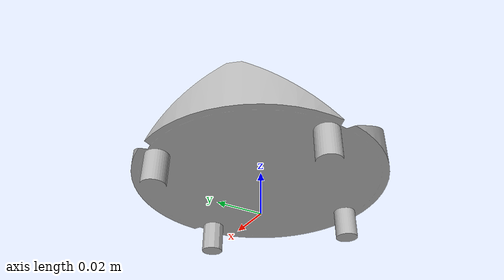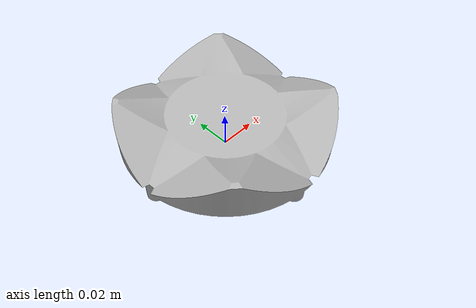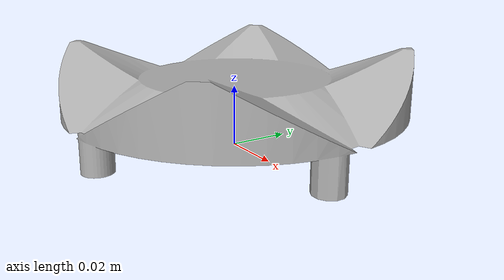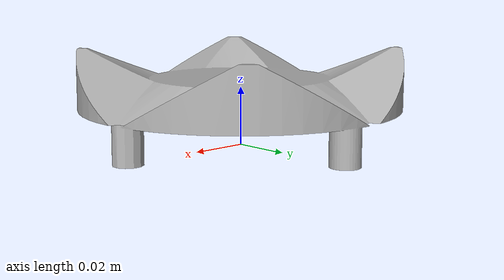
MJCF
<mujoco model="female_socket">
  <compiler angle="degree" meshdir="." />
  <asset>
    <mesh name="female_socket_mesh" file="../../iiwa14/assets/dock_1_17_new.STL" />
    <material name="female_socket_mat" rgba="0.7 0.7 0.7 1" />
    <mesh name="crown_part_000" file="component_00_part_000.obj" />
    <mesh name="crown_part_001" file="component_00_part_001.obj" />
    <mesh name="crown_part_002" file="component_00_part_002.obj" />
    <mesh name="crown_part_003" file="component_00_part_003.obj" />
    <mesh name="crown_part_004" file="component_00_part_004.obj" />
    <mesh name="crown_part_005" file="component_00_part_005.obj" />
    <mesh name="crown_part_006" file="component_00_part_006.obj" />
    <mesh name="crown_part_007" file="component_00_part_007.obj" />
    <mesh name="crown_part_008" file="component_00_part_008.obj" />
    <mesh name="crown_part_009" file="component_00_part_009.obj" />
    <mesh name="crown_part_010" file="component_00_part_010.obj" />
    <mesh name="crown_part_011" file="component_00_part_011.obj" />
    <mesh name="crown_part_012" file="component_00_part_012.obj" />
    <mesh name="crown_part_013" file="component_00_part_013.obj" />
    <mesh name="crown_part_014" file="component_00_part_014.obj" />
    <mesh name="crown_part_015" file="component_00_part_015.obj" />
    <mesh name="crown_part_016" file="component_00_part_016.obj" />
    <mesh name="crown_part_017" file="component_00_part_017.obj" />
    <mesh name="crown_part_018" file="component_00_part_018.obj" />
    <mesh name="crown_part_019" file="component_00_part_019.obj" />
    <mesh name="crown_part_020" file="component_00_part_020.obj" />
    <mesh name="crown_part_021" file="component_00_part_021.obj" />
    <mesh name="crown_part_022" file="component_00_part_022.obj" />
    <mesh name="crown_part_023" file="component_00_part_023.obj" />
    <mesh name="crown_part_024" file="component_00_part_024.obj" />
    <mesh name="crown_part_025" file="component_00_part_025.obj" />
    <mesh name="crown_part_026" file="component_00_part_026.obj" />
    <mesh name="crown_part_027" file="component_00_part_027.obj" />
    <mesh name="crown_part_028" file="component_00_part_028.obj" />
    <mesh name="crown_part_029" file="component_00_part_029.obj" />
    <mesh name="crown_part_030" file="component_00_part_030.obj" />
    <mesh name="crown_part_031" file="component_00_part_031.obj" />
    <mesh name="crown_part_032" file="component_00_part_032.obj" />
    <mesh name="crown_part_033" file="component_00_part_033.obj" />
    <mesh name="crown_part_034" file="component_00_part_034.obj" />
    <mesh name="crown_part_035" file="component_01_part_000.obj" />
    <mesh name="crown_part_036" file="component_01_part_001.obj" />
    <mesh name="crown_part_037" file="component_01_part_002.obj" />
    <mesh name="crown_part_038" file="component_01_part_003.obj" />
    <mesh name="crown_part_039" file="component_01_part_004.obj" />
    <mesh name="crown_part_040" file="component_01_part_005.obj" />
    <mesh name="crown_part_041" file="component_01_part_006.obj" />
    <mesh name="crown_part_042" file="component_01_part_007.obj" />
    <mesh name="crown_part_043" file="component_01_part_008.obj" />
    <mesh name="crown_part_044" file="component_01_part_009.obj" />
    <mesh name="crown_part_045" file="component_01_part_010.obj" />
    <mesh name="crown_part_046" file="component_01_part_011.obj" />
    <mesh name="crown_part_047" file="component_01_part_012.obj" />
    <mesh name="crown_part_048" file="component_01_part_013.obj" />
    <mesh name="crown_part_049" file="component_01_part_014.obj" />
    <mesh name="crown_part_050" file="component_01_part_015.obj" />
    <mesh name="crown_part_051" file="component_01_part_016.obj" />
    <mesh name="crown_part_052" file="component_01_part_017.obj" />
    <mesh name="crown_part_053" file="component_01_part_018.obj" />
    <mesh name="crown_part_054" file="component_01_part_019.obj" />
    <mesh name="crown_part_055" file="component_01_part_020.obj" />
    <mesh name="crown_part_056" file="component_01_part_021.obj" />
    <mesh name="crown_part_057" file="component_01_part_022.obj" />
    <mesh name="crown_part_058" file="component_01_part_023.obj" />
    <mesh name="crown_part_059" file="component_01_part_024.obj" />
    <mesh name="crown_part_060" file="component_01_part_025.obj" />
    <mesh name="crown_part_061" file="component_01_part_026.obj" />
    <mesh name="crown_part_062" file="component_01_part_027.obj" />
    <mesh name="crown_part_063" file="component_01_part_028.obj" />
    <mesh name="crown_part_064" file="component_01_part_029.obj" />
    <mesh name="crown_part_065" file="component_01_part_030.obj" />
    <mesh name="crown_part_066" file="component_02_part_000.obj" />
    <mesh name="crown_part_067" file="component_02_part_001.obj" />
    <mesh name="crown_part_068" file="component_03_part_000.obj" />
    <mesh name="crown_part_069" file="component_04_part_000.obj" />
    <mesh name="crown_part_070" file="component_05_part_000.obj" />
    <mesh name="crown_part_071" file="component_06_part_000.obj" />
    <mesh name="crown_part_072" file="component_06_part_001.obj" />
    <mesh name="crown_part_073" file="component_06_part_002.obj" />
    <mesh name="crown_part_074" file="component_06_part_003.obj" />
    <mesh name="crown_part_075" file="component_06_part_004.obj" />
    <mesh name="crown_part_076" file="component_06_part_005.obj" />
    <mesh name="crown_part_077" file="component_06_part_006.obj" />
    <mesh name="crown_part_078" file="component_06_part_007.obj" />
    <mesh name="crown_part_079" file="component_06_part_008.obj" />
    <mesh name="crown_part_080" file="component_06_part_009.obj" />
    <mesh name="crown_part_081" file="component_06_part_010.obj" />
    <mesh name="crown_part_082" file="component_06_part_011.obj" />
    <mesh name="crown_part_083" file="component_06_part_012.obj" />
    <mesh name="crown_part_084" file="component_06_part_013.obj" />
    <mesh name="crown_part_085" file="component_06_part_014.obj" />
    <mesh name="crown_part_086" file="component_06_part_015.obj" />
    <mesh name="crown_part_087" file="component_06_part_016.obj" />
    <mesh name="crown_part_088" file="component_06_part_017.obj" />
    <mesh name="crown_part_089" file="component_06_part_018.obj" />
    <mesh name="crown_part_090" file="component_06_part_019.obj" />
    <mesh name="crown_part_091" file="component_06_part_020.obj" />
    <mesh name="crown_part_092" file="component_06_part_021.obj" />
    <mesh name="crown_part_093" file="component_06_part_022.obj" />
    <mesh name="crown_part_094" file="component_06_part_023.obj" />
    <mesh name="crown_part_095" file="component_06_part_024.obj" />
    <mesh name="crown_part_096" file="component_06_part_025.obj" />
    <mesh name="crown_part_097" file="component_06_part_026.obj" />
    <mesh name="crown_part_098" file="component_06_part_027.obj" />
    <mesh name="crown_part_099" file="component_06_part_028.obj" />
    <mesh name="crown_part_100" file="component_06_part_029.obj" />
    <mesh name="crown_part_101" file="component_07_part_000.obj" />
    <mesh name="crown_part_102" file="component_07_part_001.obj" />
    <mesh name="crown_part_103" file="component_07_part_002.obj" />
    <mesh name="crown_part_104" file="component_07_part_003.obj" />
    <mesh name="crown_part_105" file="component_07_part_004.obj" />
    <mesh name="crown_part_106" file="component_07_part_005.obj" />
    <mesh name="crown_part_107" file="component_07_part_006.obj" />
    <mesh name="crown_part_108" file="component_07_part_007.obj" />
    <mesh name="crown_part_109" file="component_07_part_008.obj" />
    <mesh name="crown_part_110" file="component_07_part_009.obj" />
    <mesh name="crown_part_111" file="component_07_part_010.obj" />
    <mesh name="crown_part_112" file="component_07_part_011.obj" />
    <mesh name="crown_part_113" file="component_07_part_012.obj" />
    <mesh name="crown_part_114" file="component_07_part_013.obj" />
    <mesh name="crown_part_115" file="component_07_part_014.obj" />
    <mesh name="crown_part_116" file="component_07_part_015.obj" />
    <mesh name="crown_part_117" file="component_07_part_016.obj" />
    <mesh name="crown_part_118" file="component_07_part_017.obj" />
    <mesh name="crown_part_119" file="component_07_part_018.obj" />
    <mesh name="crown_part_120" file="component_07_part_019.obj" />
    <mesh name="crown_part_121" file="component_07_part_020.obj" />
    <mesh name="crown_part_122" file="component_07_part_021.obj" />
    <mesh name="crown_part_123" file="component_07_part_022.obj" />
    <mesh name="crown_part_124" file="component_07_part_023.obj" />
    <mesh name="crown_part_125" file="component_07_part_024.obj" />
    <mesh name="crown_part_126" file="component_07_part_025.obj" />
    <mesh name="crown_part_127" file="component_07_part_026.obj" />
    <mesh name="crown_part_128" file="component_07_part_027.obj" />
    <mesh name="crown_part_129" file="component_07_part_028.obj" />
  </asset>
  <worldbody>
    <body name="dock">
      <body name="rev">
        <inertial mass="1" pos="0 0 0" diaginertia="0.1 0.1 0.1" />
        <geom name="dock_geom" type="mesh" mesh="female_socket_mesh" material="female_socket_mat" contype="0" conaffinity="0" group="3" />
        <geom name="dock_visual" type="mesh" mesh="female_socket_mesh" material="female_socket_mat" contype="0" conaffinity="0" group="2" />
        <geom name="convex_000" type="mesh" mesh="crown_part_000" group="3" material="female_socket_mat" />
        <geom name="convex_001" type="mesh" mesh="crown_part_001" group="3" material="female_socket_mat" />
        <geom name="convex_002" type="mesh" mesh="crown_part_002" group="3" material="female_socket_mat" />
        <geom name="convex_003" type="mesh" mesh="crown_part_003" group="3" material="female_socket_mat" />
        <geom name="convex_004" type="mesh" mesh="crown_part_004" group="3" material="female_socket_mat" />
        <geom name="convex_005" type="mesh" mesh="crown_part_005" group="3" material="female_socket_mat" />
        <geom name="convex_006" type="mesh" mesh="crown_part_006" group="3" material="female_socket_mat" />
        <geom name="convex_007" type="mesh" mesh="crown_part_007" group="3" material="female_socket_mat" />
        <geom name="convex_008" type="mesh" mesh="crown_part_008" group="3" material="female_socket_mat" />
        <geom name="convex_009" type="mesh" mesh="crown_part_009" group="3" material="female_socket_mat" />
        <geom name="convex_010" type="mesh" mesh="crown_part_010" group="3" material="female_socket_mat" />
        <geom name="convex_011" type="mesh" mesh="crown_part_011" group="3" material="female_socket_mat" />
        <geom name="convex_012" type="mesh" mesh="crown_part_012" group="3" material="female_socket_mat" />
        <geom name="convex_013" type="mesh" mesh="crown_part_013" group="3" material="female_socket_mat" />
        <geom name="convex_014" type="mesh" mesh="crown_part_014" group="3" material="female_socket_mat" />
        <geom name="convex_015" type="mesh" mesh="crown_part_015" group="3" material="female_socket_mat" />
        <geom name="convex_016" type="mesh" mesh="crown_part_016" group="3" material="female_socket_mat" />
        <geom name="convex_017" type="mesh" mesh="crown_part_017" group="3" material="female_socket_mat" />
        <geom name="convex_018" type="mesh" mesh="crown_part_018" group="3" material="female_socket_mat" />
        <geom name="convex_019" type="mesh" mesh="crown_part_019" group="3" material="female_socket_mat" />
        <geom name="convex_020" type="mesh" mesh="crown_part_020" group="3" material="female_socket_mat" />
        <geom name="convex_021" type="mesh" mesh="crown_part_021" group="3" material="female_socket_mat" />
        <geom name="convex_022" type="mesh" mesh="crown_part_022" group="3" material="female_socket_mat" />
        <geom name="convex_023" type="mesh" mesh="crown_part_023" group="3" material="female_socket_mat" />
        <geom name="convex_024" type="mesh" mesh="crown_part_024" group="3" material="female_socket_mat" />
        <geom name="convex_025" type="mesh" mesh="crown_part_025" group="3" material="female_socket_mat" />
        <geom name="convex_026" type="mesh" mesh="crown_part_026" group="3" material="female_socket_mat" />
        <geom name="convex_027" type="mesh" mesh="crown_part_027" group="3" material="female_socket_mat" />
        <geom name="convex_028" type="mesh" mesh="crown_part_028" group="3" material="female_socket_mat" />
        <geom name="convex_029" type="mesh" mesh="crown_part_029" group="3" material="female_socket_mat" />
        <geom name="convex_030" type="mesh" mesh="crown_part_030" group="3" material="female_socket_mat" />
        <geom name="convex_031" type="mesh" mesh="crown_part_031" group="3" material="female_socket_mat" />
        <geom name="convex_032" type="mesh" mesh="crown_part_032" group="3" material="female_socket_mat" />
        <geom name="convex_033" type="mesh" mesh="crown_part_033" group="3" material="female_socket_mat" />
        <geom name="convex_034" type="mesh" mesh="crown_part_034" group="3" material="female_socket_mat" />
        <geom name="convex_035" type="mesh" mesh="crown_part_035" group="3" material="female_socket_mat" />
        <geom name="convex_036" type="mesh" mesh="crown_part_036" group="3" material="female_socket_mat" />
        <geom name="convex_037" type="mesh" mesh="crown_part_037" group="3" material="female_socket_mat" />
        <geom name="convex_038" type="mesh" mesh="crown_part_038" group="3" material="female_socket_mat" />
        <geom name="convex_039" type="mesh" mesh="crown_part_039" group="3" material="female_socket_mat" />
        <geom name="convex_040" type="mesh" mesh="crown_part_040" group="3" material="female_socket_mat" />
        <geom name="convex_041" type="mesh" mesh="crown_part_041" group="3" material="female_socket_mat" />
        <geom name="convex_042" type="mesh" mesh="crown_part_042" group="3" material="female_socket_mat" />
        <geom name="convex_043" type="mesh" mesh="crown_part_043" group="3" material="female_socket_mat" />
        <geom name="convex_044" type="mesh" mesh="crown_part_044" group="3" material="female_socket_mat" />
        <geom name="convex_045" type="mesh" mesh="crown_part_045" group="3" material="female_socket_mat" />
        <geom name="convex_046" type="mesh" mesh="crown_part_046" group="3" material="female_socket_mat" />
        <geom name="convex_047" type="mesh" mesh="crown_part_047" group="3" material="female_socket_mat" />
        <geom name="convex_048" type="mesh" mesh="crown_part_048" group="3" material="female_socket_mat" />
        <geom name="convex_049" type="mesh" mesh="crown_part_049" group="3" material="female_socket_mat" />
        <geom name="convex_050" type="mesh" mesh="crown_part_050" group="3" material="female_socket_mat" />
        <geom name="convex_051" type="mesh" mesh="crown_part_051" group="3" material="female_socket_mat" />
        <geom name="convex_052" type="mesh" mesh="crown_part_052" group="3" material="female_socket_mat" />
        <geom name="convex_053" type="mesh" mesh="crown_part_053" group="3" material="female_socket_mat" />
        <geom name="convex_054" type="mesh" mesh="crown_part_054" group="3" material="female_socket_mat" />
        <geom name="convex_055" type="mesh" mesh="crown_part_055" group="3" material="female_socket_mat" />
        <geom name="convex_056" type="mesh" mesh="crown_part_056" group="3" material="female_socket_mat" />
        <geom name="convex_057" type="mesh" mesh="crown_part_057" group="3" material="female_socket_mat" />
        <geom name="convex_058" type="mesh" mesh="crown_part_058" group="3" material="female_socket_mat" />
        <geom name="convex_059" type="mesh" mesh="crown_part_059" group="3" material="female_socket_mat" />
        <geom name="convex_060" type="mesh" mesh="crown_part_060" group="3" material="female_socket_mat" />
        <geom name="convex_061" type="mesh" mesh="crown_part_061" group="3" material="female_socket_mat" />
        <geom name="convex_062" type="mesh" mesh="crown_part_062" group="3" material="female_socket_mat" />
        <geom name="convex_063" type="mesh" mesh="crown_part_063" group="3" material="female_socket_mat" />
        <geom name="convex_064" type="mesh" mesh="crown_part_064" group="3" material="female_socket_mat" />
        <geom name="convex_065" type="mesh" mesh="crown_part_065" group="3" material="female_socket_mat" />
        <geom name="convex_066" type="mesh" mesh="crown_part_066" group="3" material="female_socket_mat" />
        <geom name="convex_067" type="mesh" mesh="crown_part_067" group="3" material="female_socket_mat" />
        <geom name="convex_068" type="mesh" mesh="crown_part_068" group="3" material="female_socket_mat" />
        <geom name="convex_069" type="mesh" mesh="crown_part_069" group="3" material="female_socket_mat" />
        <geom name="convex_070" type="mesh" mesh="crown_part_070" group="3" material="female_socket_mat" />
        <geom name="convex_071" type="mesh" mesh="crown_part_071" group="3" material="female_socket_mat" />
        <geom name="convex_072" type="mesh" mesh="crown_part_072" group="3" material="female_socket_mat" />
        <geom name="convex_073" type="mesh" mesh="crown_part_073" group="3" material="female_socket_mat" />
        <geom name="convex_074" type="mesh" mesh="crown_part_074" group="3" material="female_socket_mat" />
        <geom name="convex_075" type="mesh" mesh="crown_part_075" group="3" material="female_socket_mat" />
        <geom name="convex_076" type="mesh" mesh="crown_part_076" group="3" material="female_socket_mat" />
        <geom name="convex_077" type="mesh" mesh="crown_part_077" group="3" material="female_socket_mat" />
        <geom name="convex_078" type="mesh" mesh="crown_part_078" group="3" material="female_socket_mat" />
        <geom name="convex_079" type="mesh" mesh="crown_part_079" group="3" material="female_socket_mat" />
        <geom name="convex_080" type="mesh" mesh="crown_part_080" group="3" material="female_socket_mat" />
        <geom name="convex_081" type="mesh" mesh="crown_part_081" group="3" material="female_socket_mat" />
        <geom name="convex_082" type="mesh" mesh="crown_part_082" group="3" material="female_socket_mat" />
        <geom name="convex_083" type="mesh" mesh="crown_part_083" group="3" material="female_socket_mat" />
        <geom name="convex_084" type="mesh" mesh="crown_part_084" group="3" material="female_socket_mat" />
        <geom name="convex_085" type="mesh" mesh="crown_part_085" group="3" material="female_socket_mat" />
        <geom name="convex_086" type="mesh" mesh="crown_part_086" group="3" material="female_socket_mat" />
        <geom name="convex_087" type="mesh" mesh="crown_part_087" group="3" material="female_socket_mat" />
        <geom name="convex_088" type="mesh" mesh="crown_part_088" group="3" material="female_socket_mat" />
        <geom name="convex_089" type="mesh" mesh="crown_part_089" group="3" material="female_socket_mat" />
        <geom name="convex_090" type="mesh" mesh="crown_part_090" group="3" material="female_socket_mat" />
        <geom name="convex_091" type="mesh" mesh="crown_part_091" group="3" material="female_socket_mat" />
        <geom name="convex_092" type="mesh" mesh="crown_part_092" group="3" material="female_socket_mat" />
        <geom name="convex_093" type="mesh" mesh="crown_part_093" group="3" material="female_socket_mat" />
        <geom name="convex_094" type="mesh" mesh="crown_part_094" group="3" material="female_socket_mat" />
        <geom name="convex_095" type="mesh" mesh="crown_part_095" group="3" material="female_socket_mat" />
        <geom name="convex_096" type="mesh" mesh="crown_part_096" group="3" material="female_socket_mat" />
        <geom name="convex_097" type="mesh" mesh="crown_part_097" group="3" material="female_socket_mat" />
        <geom name="convex_098" type="mesh" mesh="crown_part_098" group="3" material="female_socket_mat" />
        <geom name="convex_099" type="mesh" mesh="crown_part_099" group="3" material="female_socket_mat" />
        <geom name="convex_100" type="mesh" mesh="crown_part_100" group="3" material="female_socket_mat" />
        <geom name="convex_101" type="mesh" mesh="crown_part_101" group="3" material="female_socket_mat" />
        <geom name="convex_102" type="mesh" mesh="crown_part_102" group="3" material="female_socket_mat" />
        <geom name="convex_103" type="mesh" mesh="crown_part_103" group="3" material="female_socket_mat" />
        <geom name="convex_104" type="mesh" mesh="crown_part_104" group="3" material="female_socket_mat" />
        <geom name="convex_105" type="mesh" mesh="crown_part_105" group="3" material="female_socket_mat" />
        <geom name="convex_106" type="mesh" mesh="crown_part_106" group="3" material="female_socket_mat" />
        <geom name="convex_107" type="mesh" mesh="crown_part_107" group="3" material="female_socket_mat" />
        <geom name="convex_108" type="mesh" mesh="crown_part_108" group="3" material="female_socket_mat" />
        <geom name="convex_109" type="mesh" mesh="crown_part_109" group="3" material="female_socket_mat" />
        <geom name="convex_110" type="mesh" mesh="crown_part_110" group="3" material="female_socket_mat" />
        <geom name="convex_111" type="mesh" mesh="crown_part_111" group="3" material="female_socket_mat" />
        <geom name="convex_112" type="mesh" mesh="crown_part_112" group="3" material="female_socket_mat" />
        <geom name="convex_113" type="mesh" mesh="crown_part_113" group="3" material="female_socket_mat" />
        <geom name="convex_114" type="mesh" mesh="crown_part_114" group="3" material="female_socket_mat" />
        <geom name="convex_115" type="mesh" mesh="crown_part_115" group="3" material="female_socket_mat" />
        <geom name="convex_116" type="mesh" mesh="crown_part_116" group="3" material="female_socket_mat" />
        <geom name="convex_117" type="mesh" mesh="crown_part_117" group="3" material="female_socket_mat" />
        <geom name="convex_118" type="mesh" mesh="crown_part_118" group="3" material="female_socket_mat" />
        <geom name="convex_119" type="mesh" mesh="crown_part_119" group="3" material="female_socket_mat" />
        <geom name="convex_120" type="mesh" mesh="crown_part_120" group="3" material="female_socket_mat" />
        <geom name="convex_121" type="mesh" mesh="crown_part_121" group="3" material="female_socket_mat" />
        <geom name="convex_122" type="mesh" mesh="crown_part_122" group="3" material="female_socket_mat" />
        <geom name="convex_123" type="mesh" mesh="crown_part_123" group="3" material="female_socket_mat" />
        <geom name="convex_124" type="mesh" mesh="crown_part_124" group="3" material="female_socket_mat" />
        <geom name="convex_125" type="mesh" mesh="crown_part_125" group="3" material="female_socket_mat" />
        <geom name="convex_126" type="mesh" mesh="crown_part_126" group="3" material="female_socket_mat" />
        <geom name="convex_127" type="mesh" mesh="crown_part_127" group="3" material="female_socket_mat" />
        <geom name="convex_128" type="mesh" mesh="crown_part_128" group="3" material="female_socket_mat" />
        <geom name="convex_129" type="mesh" mesh="crown_part_129" group="3" material="female_socket_mat" />
      </body>
    </body>
  </worldbody>
</mujoco>
